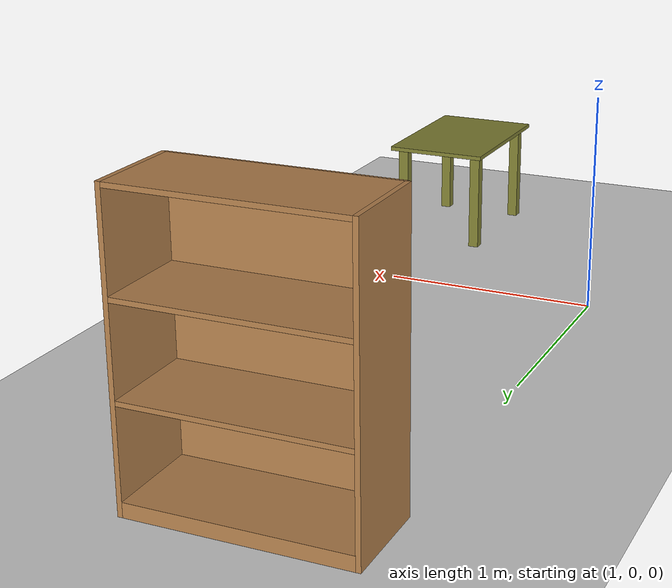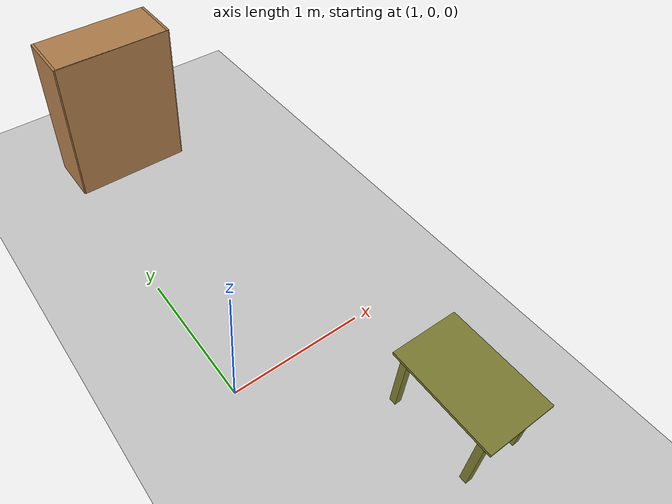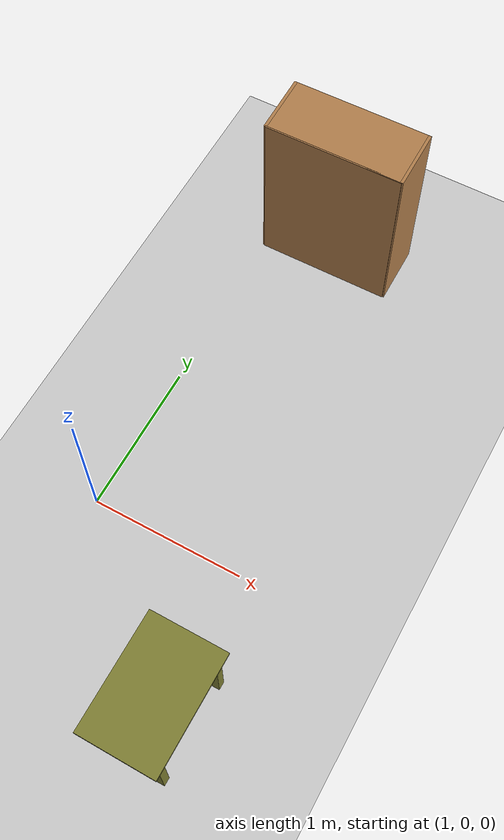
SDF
<sdf version="1.6">
 <world name="default">
  <model name="ground_plane">
   <static>1</static>
   <link name="link">
    <collision name="collision">
     <geometry><plane><normal>0 0 1</normal><size>100 100</size></plane></geometry>
     <surface>
      <contact><collide_bitmask>65535</collide_bitmask></contact>
      <friction><ode><mu>100</mu><mu2>50</mu2></ode></friction>
     </surface>
    </collision>
    <visual name="visual">
     <cast_shadows>0</cast_shadows>
     <geometry><plane><normal>0 0 1</normal><size>100 100</size></plane></geometry>
     <material>
      <script><uri>file://media/materials/scripts/gazebo.material</uri><name>Gazebo/Grey</name></script>
     </material>
    </visual>
   </link>
  </model>
  <model name="my_table_clone_0">
   <link name="link_0">
    <pose>0.072072 -4.79324 0.208333 0 -0 0</pose>
    <inertial>
     <mass>1</mass>
     <inertia>
      <ixx>0.166667</ixx>
      <ixy>0</ixy>
      <ixz>0</ixz>
      <iyy>0.166667</iyy>
      <iyz>0</iyz>
      <izz>0.166667</izz>
     </inertia>
    </inertial>
    <visual name="visual">
     <geometry><box><size>0.5 0.75 0.02</size></box></geometry>
     <material>
      <lighting>1</lighting>
      <script><uri>file://media/materials/scripts/gazebo.material</uri><name>Gazebo/Grey</name></script>
      <shader type="pixel"><normal_map>__default__</normal_map></shader>
      <ambient>0.5 0.5 0.2 1</ambient>
      <diffuse>0.5 0.5 0.2 1</diffuse>
      <specular>0.01 0.01 0.01 1</specular>
      <emissive>0 0 0 1</emissive>
     </material>
    </visual>
    <collision name="collision">
     <geometry><box><size>0.5 0.75 0.02</size></box></geometry>
     <surface>
      <friction>
       <ode><mu>1</mu><mu2>1</mu2><fdir1>0 0 0</fdir1><slip1>0</slip1><slip2>0</slip2></ode>
       <torsional>
        <coefficient>1</coefficient>
        <patch_radius>0</patch_radius>
        <surface_radius>0</surface_radius>
        <use_patch_radius>1</use_patch_radius>
        <ode><slip>0</slip></ode>
       </torsional>
      </friction>
      <bounce><restitution_coefficient>0</restitution_coefficient><threshold>1e+06</threshold></bounce>
      <contact>
       <collide_without_contact>0</collide_without_contact>
       <collide_without_contact_bitmask>1</collide_without_contact_bitmask>
       <collide_bitmask>1</collide_bitmask>
       <ode>
        <soft_cfm>0</soft_cfm>
        <soft_erp>0.2</soft_erp>
        <kp>1e+13</kp>
        <kd>1</kd>
        <max_vel>0.01</max_vel>
        <min_depth>0</min_depth>
       </ode>
       <bullet>
        <split_impulse>1</split_impulse>
        <split_impulse_penetration_threshold>-0.01</split_impulse_penetration_threshold>
        <soft_cfm>0</soft_cfm>
        <soft_erp>0.2</soft_erp>
        <kp>1e+13</kp>
        <kd>1</kd>
       </bullet>
      </contact>
     </surface>
    </collision>
   </link>
   <link name="link_0_clone">
    <pose>0.272072 -4.49324 -0.041667 0 -0 0</pose>
    <inertial>
     <mass>1</mass>
     <inertia>
      <ixx>0.166667</ixx>
      <ixy>0</ixy>
      <ixz>0</ixz>
      <iyy>0.166667</iyy>
      <iyz>0</iyz>
      <izz>0.166667</izz>
     </inertia>
    </inertial>
    <visual name="visual">
     <geometry><box><size>0.05 0.05 0.49</size></box></geometry>
     <material>
      <lighting>1</lighting>
      <script><uri>file://media/materials/scripts/gazebo.material</uri><name>Gazebo/Grey</name></script>
      <shader type="pixel"><normal_map>__default__</normal_map></shader>
      <ambient>0.5 0.5 0.2 1</ambient>
      <diffuse>0.5 0.5 0.2 1</diffuse>
      <specular>0.01 0.01 0.01 1</specular>
      <emissive>0 0 0 1</emissive>
     </material>
    </visual>
    <collision name="collision">
     <geometry><box><size>0.05 0.05 0.49</size></box></geometry>
     <surface>
      <friction>
       <ode><mu>1</mu><mu2>1</mu2><fdir1>0 0 0</fdir1><slip1>0</slip1><slip2>0</slip2></ode>
       <torsional>
        <coefficient>1</coefficient>
        <patch_radius>0</patch_radius>
        <surface_radius>0</surface_radius>
        <use_patch_radius>1</use_patch_radius>
        <ode><slip>0</slip></ode>
       </torsional>
      </friction>
      <bounce><restitution_coefficient>0</restitution_coefficient><threshold>1e+06</threshold></bounce>
      <contact>
       <collide_without_contact>0</collide_without_contact>
       <collide_without_contact_bitmask>1</collide_without_contact_bitmask>
       <collide_bitmask>1</collide_bitmask>
       <ode>
        <soft_cfm>0</soft_cfm>
        <soft_erp>0.2</soft_erp>
        <kp>1e+13</kp>
        <kd>1</kd>
        <max_vel>0.01</max_vel>
        <min_depth>0</min_depth>
       </ode>
       <bullet>
        <split_impulse>1</split_impulse>
        <split_impulse_penetration_threshold>-0.01</split_impulse_penetration_threshold>
        <soft_cfm>0</soft_cfm>
        <soft_erp>0.2</soft_erp>
        <kp>1e+13</kp>
        <kd>1</kd>
       </bullet>
      </contact>
     </surface>
    </collision>
   </link>
   <link name="link_0_clone_clone_0">
    <pose>-0.127928 -4.49324 -0.041667 0 -0 0</pose>
    <inertial>
     <mass>1</mass>
     <inertia>
      <ixx>0.166667</ixx>
      <ixy>0</ixy>
      <ixz>0</ixz>
      <iyy>0.166667</iyy>
      <iyz>0</iyz>
      <izz>0.166667</izz>
     </inertia>
    </inertial>
    <visual name="visual">
     <geometry><box><size>0.05 0.05 0.49</size></box></geometry>
     <material>
      <lighting>1</lighting>
      <script><uri>file://media/materials/scripts/gazebo.material</uri><name>Gazebo/Grey</name></script>
      <shader type="pixel"><normal_map>__default__</normal_map></shader>
      <ambient>0.5 0.5 0.2 1</ambient>
      <diffuse>0.5 0.5 0.2 1</diffuse>
      <specular>0.01 0.01 0.01 1</specular>
      <emissive>0 0 0 1</emissive>
     </material>
    </visual>
    <collision name="collision">
     <geometry><box><size>0.05 0.05 0.49</size></box></geometry>
     <surface>
      <friction>
       <ode><mu>1</mu><mu2>1</mu2><fdir1>0 0 0</fdir1><slip1>0</slip1><slip2>0</slip2></ode>
       <torsional>
        <coefficient>1</coefficient>
        <patch_radius>0</patch_radius>
        <surface_radius>0</surface_radius>
        <use_patch_radius>1</use_patch_radius>
        <ode><slip>0</slip></ode>
       </torsional>
      </friction>
      <bounce><restitution_coefficient>0</restitution_coefficient><threshold>1e+06</threshold></bounce>
      <contact>
       <collide_without_contact>0</collide_without_contact>
       <collide_without_contact_bitmask>1</collide_without_contact_bitmask>
       <collide_bitmask>1</collide_bitmask>
       <ode>
        <soft_cfm>0</soft_cfm>
        <soft_erp>0.2</soft_erp>
        <kp>1e+13</kp>
        <kd>1</kd>
        <max_vel>0.01</max_vel>
        <min_depth>0</min_depth>
       </ode>
       <bullet>
        <split_impulse>1</split_impulse>
        <split_impulse_penetration_threshold>-0.01</split_impulse_penetration_threshold>
        <soft_cfm>0</soft_cfm>
        <soft_erp>0.2</soft_erp>
        <kp>1e+13</kp>
        <kd>1</kd>
       </bullet>
      </contact>
     </surface>
    </collision>
   </link>
   <link name="link_0_clone_clone_1">
    <pose>0.272072 -5.09324 -0.041667 0 -0 0</pose>
    <inertial>
     <mass>1</mass>
     <inertia>
      <ixx>0.166667</ixx>
      <ixy>0</ixy>
      <ixz>0</ixz>
      <iyy>0.166667</iyy>
      <iyz>0</iyz>
      <izz>0.166667</izz>
     </inertia>
    </inertial>
    <visual name="visual">
     <geometry><box><size>0.05 0.05 0.49</size></box></geometry>
     <material>
      <lighting>1</lighting>
      <script><uri>file://media/materials/scripts/gazebo.material</uri><name>Gazebo/Grey</name></script>
      <shader type="pixel"><normal_map>__default__</normal_map></shader>
      <ambient>0.5 0.5 0.2 1</ambient>
      <diffuse>0.5 0.5 0.2 1</diffuse>
      <specular>0.01 0.01 0.01 1</specular>
      <emissive>0 0 0 1</emissive>
     </material>
    </visual>
    <collision name="collision">
     <geometry><box><size>0.05 0.05 0.49</size></box></geometry>
     <surface>
      <friction>
       <ode><mu>1</mu><mu2>1</mu2><fdir1>0 0 0</fdir1><slip1>0</slip1><slip2>0</slip2></ode>
       <torsional>
        <coefficient>1</coefficient>
        <patch_radius>0</patch_radius>
        <surface_radius>0</surface_radius>
        <use_patch_radius>1</use_patch_radius>
        <ode><slip>0</slip></ode>
       </torsional>
      </friction>
      <bounce><restitution_coefficient>0</restitution_coefficient><threshold>1e+06</threshold></bounce>
      <contact>
       <collide_without_contact>0</collide_without_contact>
       <collide_without_contact_bitmask>1</collide_without_contact_bitmask>
       <collide_bitmask>1</collide_bitmask>
       <ode>
        <soft_cfm>0</soft_cfm>
        <soft_erp>0.2</soft_erp>
        <kp>1e+13</kp>
        <kd>1</kd>
        <max_vel>0.01</max_vel>
        <min_depth>0</min_depth>
       </ode>
       <bullet>
        <split_impulse>1</split_impulse>
        <split_impulse_penetration_threshold>-0.01</split_impulse_penetration_threshold>
        <soft_cfm>0</soft_cfm>
        <soft_erp>0.2</soft_erp>
        <kp>1e+13</kp>
        <kd>1</kd>
       </bullet>
      </contact>
     </surface>
    </collision>
   </link>
   <link name="link_0_clone_clone_2">
    <pose>-0.127928 -5.09324 -0.041667 0 -0 0</pose>
    <inertial>
     <mass>1</mass>
     <inertia>
      <ixx>0.166667</ixx>
      <ixy>0</ixy>
      <ixz>0</ixz>
      <iyy>0.166667</iyy>
      <iyz>0</iyz>
      <izz>0.166667</izz>
     </inertia>
    </inertial>
    <visual name="visual">
     <geometry><box><size>0.05 0.05 0.49</size></box></geometry>
     <material>
      <lighting>1</lighting>
      <script><uri>file://media/materials/scripts/gazebo.material</uri><name>Gazebo/Grey</name></script>
      <shader type="pixel"><normal_map>__default__</normal_map></shader>
      <ambient>0.5 0.5 0.2 1</ambient>
      <diffuse>0.5 0.5 0.2 1</diffuse>
      <specular>0.01 0.01 0.01 1</specular>
      <emissive>0 0 0 1</emissive>
     </material>
    </visual>
    <collision name="collision">
     <geometry><box><size>0.05 0.05 0.49</size></box></geometry>
     <surface>
      <friction>
       <ode><mu>1</mu><mu2>1</mu2><fdir1>0 0 0</fdir1><slip1>0</slip1><slip2>0</slip2></ode>
       <torsional>
        <coefficient>1</coefficient>
        <patch_radius>0</patch_radius>
        <surface_radius>0</surface_radius>
        <use_patch_radius>1</use_patch_radius>
        <ode><slip>0</slip></ode>
       </torsional>
      </friction>
      <bounce><restitution_coefficient>0</restitution_coefficient><threshold>1e+06</threshold></bounce>
      <contact>
       <collide_without_contact>0</collide_without_contact>
       <collide_without_contact_bitmask>1</collide_without_contact_bitmask>
       <collide_bitmask>1</collide_bitmask>
       <ode>
        <soft_cfm>0</soft_cfm>
        <soft_erp>0.2</soft_erp>
        <kp>1e+13</kp>
        <kd>1</kd>
        <max_vel>0.01</max_vel>
        <min_depth>0</min_depth>
       </ode>
       <bullet>
        <split_impulse>1</split_impulse>
        <split_impulse_penetration_threshold>-0.01</split_impulse_penetration_threshold>
        <soft_cfm>0</soft_cfm>
        <soft_erp>0.2</soft_erp>
        <kp>1e+13</kp>
        <kd>1</kd>
       </bullet>
      </contact>
     </surface>
    </collision>
   </link>
   <joint name="link_0_JOINT_4" type="fixed">
    <parent>link_0</parent>
    <child>link_0_clone</child>
    <physics>
     <ode><limit><cfm>0</cfm><erp>0.2</erp></limit><suspension><cfm>0</cfm><erp>0.2</erp></suspension></ode>
    </physics>
   </joint>
   <joint name="link_0_JOINT_5" type="fixed">
    <parent>link_0</parent>
    <child>link_0_clone_clone_0</child>
    <physics>
     <ode><limit><cfm>0</cfm><erp>0.2</erp></limit><suspension><cfm>0</cfm><erp>0.2</erp></suspension></ode>
    </physics>
   </joint>
   <joint name="link_0_JOINT_6" type="fixed">
    <parent>link_0</parent>
    <child>link_0_clone_clone_1</child>
    <physics>
     <ode><limit><cfm>0</cfm><erp>0.2</erp></limit><suspension><cfm>0</cfm><erp>0.2</erp></suspension></ode>
    </physics>
   </joint>
   <joint name="link_0_JOINT_7" type="fixed">
    <parent>link_0</parent>
    <child>link_0_clone_clone_2</child>
    <physics>
     <ode><limit><cfm>0</cfm><erp>0.2</erp></limit><suspension><cfm>0</cfm><erp>0.2</erp></suspension></ode>
    </physics>
   </joint>
   <static>0</static>
   <pose>1.9531 3.87664 0.286666 0 -2e-06 -0.004011</pose>
  </model>
  <model name="bookshelf">
   <static>1</static>
   <link name="link">
    <inertial><mass>1</mass></inertial>
    <collision name="back">
     <pose>0 0.005 0.6 0 -0 0</pose>
     <geometry><box><size>0.9 0.01 1.2</size></box></geometry>
    </collision>
    <visual name="visual1">
     <pose>0 0.005 0.6 0 -0 0</pose>
     <geometry><box><size>0.9 0.01 1.2</size></box></geometry>
     <material>
      <script><uri>file://media/materials/scripts/gazebo.material</uri><name>Gazebo/Wood</name></script>
     </material>
    </visual>
    <collision name="left_side">
     <pose>0.45 -0.195 0.6 0 -0 0</pose>
     <geometry><box><size>0.02 0.4 1.2</size></box></geometry>
    </collision>
    <visual name="visual2">
     <pose>0.45 -0.195 0.6 0 -0 0</pose>
     <geometry><box><size>0.02 0.4 1.2</size></box></geometry>
     <material>
      <script><uri>file://media/materials/scripts/gazebo.material</uri><name>Gazebo/Wood</name></script>
     </material>
    </visual>
    <collision name="right_side">
     <pose>-0.45 -0.195 0.6 0 -0 0</pose>
     <geometry><box><size>0.02 0.4 1.2</size></box></geometry>
    </collision>
    <visual name="visual3">
     <pose>-0.45 -0.195 0.6 0 -0 0</pose>
     <geometry><box><size>0.02 0.4 1.2</size></box></geometry>
     <material>
      <script><uri>file://media/materials/scripts/gazebo.material</uri><name>Gazebo/Wood</name></script>
     </material>
    </visual>
    <collision name="bottom">
     <pose>0 -0.195 0.03 0 -0 0</pose>
     <geometry><box><size>0.88 0.4 0.06</size></box></geometry>
    </collision>
    <visual name="visual4">
     <pose>0 -0.195 0.03 0 -0 0</pose>
     <geometry><box><size>0.88 0.4 0.06</size></box></geometry>
     <material>
      <script><uri>file://media/materials/scripts/gazebo.material</uri><name>Gazebo/Wood</name></script>
     </material>
    </visual>
    <collision name="top">
     <pose>0 -0.195 1.19 0 -0 0</pose>
     <geometry><box><size>0.88 0.4 0.02</size></box></geometry>
    </collision>
    <visual name="visual5">
     <pose>0 -0.195 1.19 0 -0 0</pose>
     <geometry><box><size>0.88 0.4 0.02</size></box></geometry>
     <material>
      <script><uri>file://media/materials/scripts/gazebo.material</uri><name>Gazebo/Wood</name></script>
     </material>
    </visual>
    <collision name="low_shelf">
     <pose>0 -0.195 0.43 0 -0 0</pose>
     <geometry><box><size>0.88 0.4 0.02</size></box></geometry>
    </collision>
    <visual name="visual6">
     <pose>0 -0.195 0.43 0 -0 0</pose>
     <geometry><box><size>0.88 0.4 0.02</size></box></geometry>
     <material>
      <script><uri>file://media/materials/scripts/gazebo.material</uri><name>Gazebo/Wood</name></script>
     </material>
    </visual>
    <collision name="high_shelf">
     <pose>0 -0.195 0.8 0 -0 0</pose>
     <geometry><box><size>0.88 0.4 0.02</size></box></geometry>
    </collision>
    <visual name="visual7">
     <pose>0 -0.195 0.8 0 -0 0</pose>
     <geometry><box><size>0.88 0.4 0.02</size></box></geometry>
     <material>
      <script><uri>file://media/materials/scripts/gazebo.material</uri><name>Gazebo/Wood</name></script>
     </material>
    </visual>
   </link>
   <pose>1.43287 2.19209 0 0 0 -3.13572</pose>
  </model>
 </world>
</sdf>
